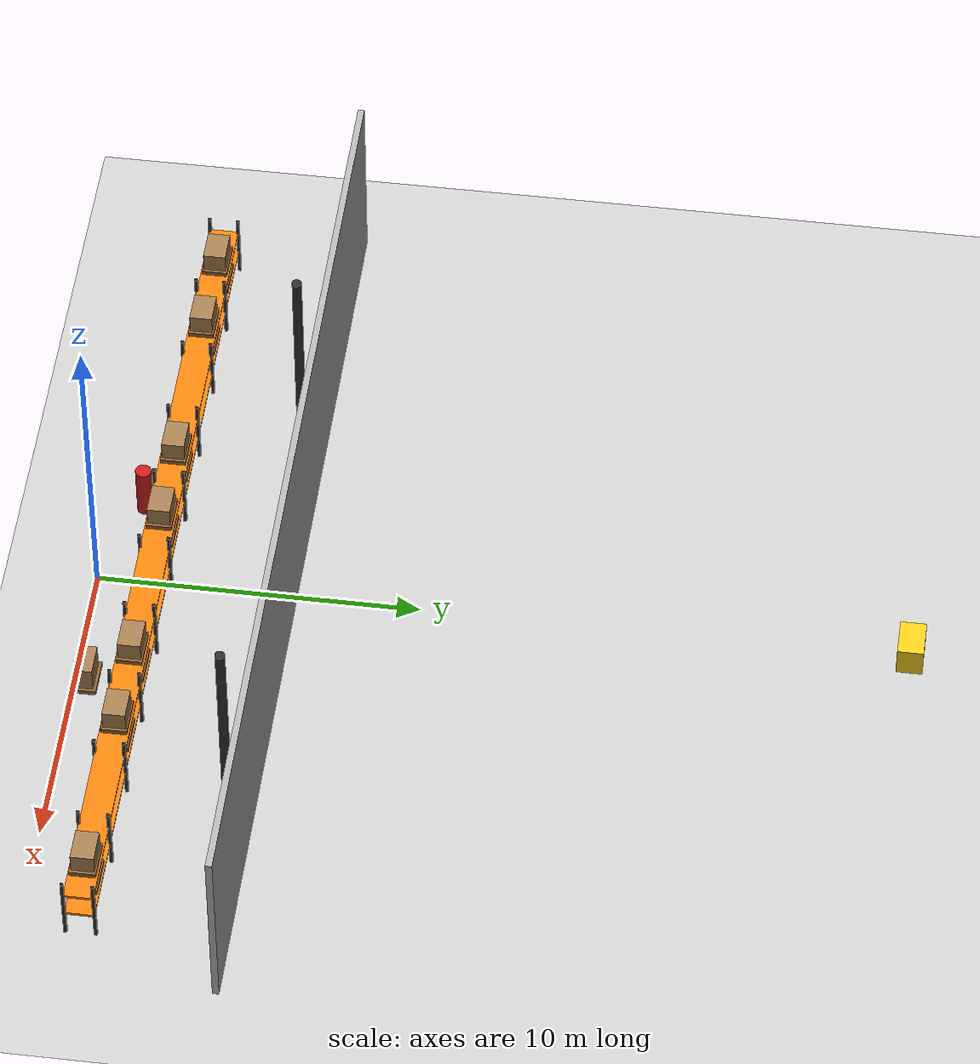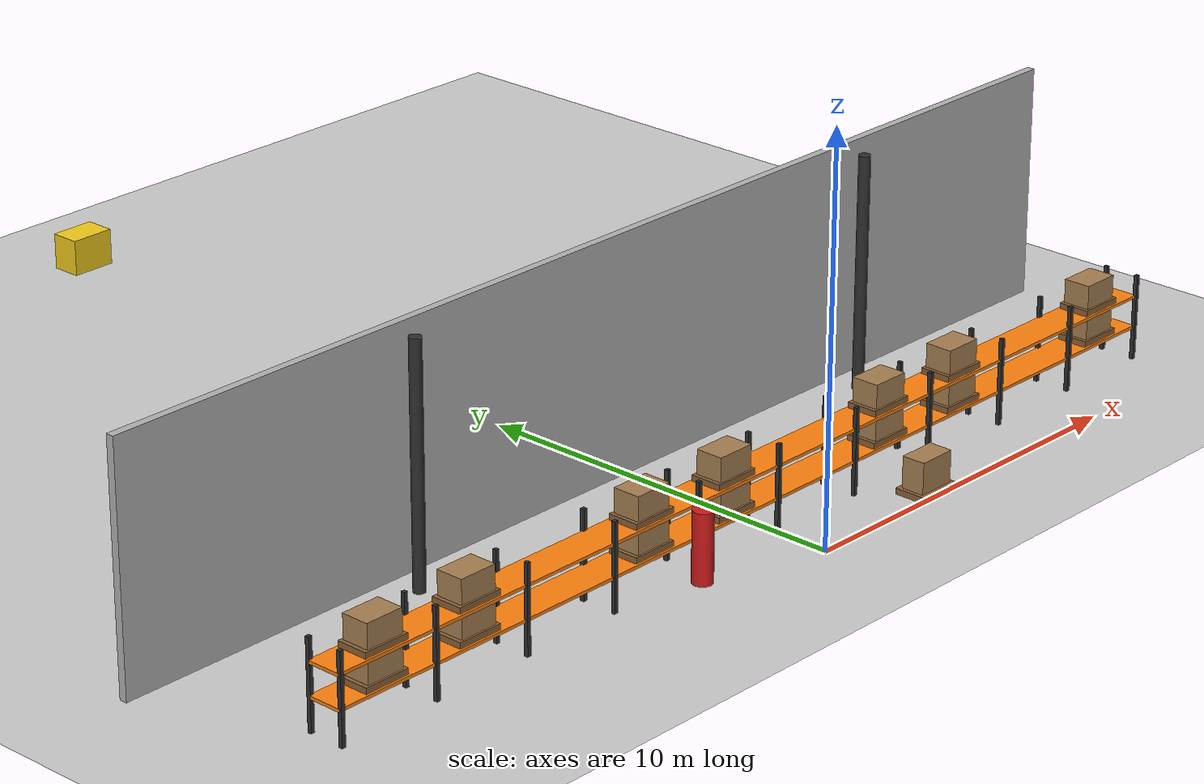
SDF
<sdf version="1.9">
 <world name="warehouse">
  <model name="ground_plane">
   <static>true</static>
   <link name="link">
    <collision name="collision">
     <geometry><plane><normal>0 0 1</normal><size>100 100</size></plane></geometry>
     <surface><friction><ode><mu>100</mu><mu2>50</mu2></ode></friction></surface>
    </collision>
    <visual name="visual">
     <geometry><plane><normal>0 0 1</normal><size>100 100</size></plane></geometry>
     <material><ambient>0.8 0.8 0.8 1</ambient><diffuse>0.8 0.8 0.8 1</diffuse></material>
    </visual>
   </link>
  </model>
  <model name="wall_north">
   <static>true</static>
   <pose>0.0000 6.1000 3.0000 0 0 0</pose>
   <link name="link">
    <collision name="collision"><geometry><box><size>30.4000 0.2000 6.0000</size></box></geometry></collision>
    <visual name="visual">
     <geometry><box><size>30.4000 0.2000 6.0000</size></box></geometry>
     <material>
      <ambient>0.70 0.70 0.70 1</ambient>
      <diffuse>0.70 0.70 0.70 1</diffuse>
      <specular>0.1 0.1 0.1 1</specular>
     </material>
    </visual>
   </link>
  </model>
  <model name="upright_n_0_0">
   <static>true</static>
   <pose>-13.5000 1.4000 1.1000 0 0 0</pose>
   <link name="link">
    <collision name="collision"><geometry><box><size>0.1000 0.1000 2.2000</size></box></geometry></collision>
    <visual name="visual">
     <geometry><box><size>0.1000 0.1000 2.2000</size></box></geometry>
     <material>
      <ambient>0.18 0.18 0.18 1</ambient>
      <diffuse>0.18 0.18 0.18 1</diffuse>
      <specular>0.1 0.1 0.1 1</specular>
     </material>
    </visual>
   </link>
  </model>
  <model name="upright_n_0_1">
   <static>true</static>
   <pose>-13.5000 2.3000 1.1000 0 0 0</pose>
   <link name="link">
    <collision name="collision"><geometry><box><size>0.1000 0.1000 2.2000</size></box></geometry></collision>
    <visual name="visual">
     <geometry><box><size>0.1000 0.1000 2.2000</size></box></geometry>
     <material>
      <ambient>0.18 0.18 0.18 1</ambient>
      <diffuse>0.18 0.18 0.18 1</diffuse>
      <specular>0.1 0.1 0.1 1</specular>
     </material>
    </visual>
   </link>
  </model>
  <model name="upright_n_1_0">
   <static>true</static>
   <pose>-10.8000 1.4000 1.1000 0 0 0</pose>
   <link name="link">
    <collision name="collision"><geometry><box><size>0.1000 0.1000 2.2000</size></box></geometry></collision>
    <visual name="visual">
     <geometry><box><size>0.1000 0.1000 2.2000</size></box></geometry>
     <material>
      <ambient>0.18 0.18 0.18 1</ambient>
      <diffuse>0.18 0.18 0.18 1</diffuse>
      <specular>0.1 0.1 0.1 1</specular>
     </material>
    </visual>
   </link>
  </model>
  <model name="upright_n_1_1">
   <static>true</static>
   <pose>-10.8000 2.3000 1.1000 0 0 0</pose>
   <link name="link">
    <collision name="collision"><geometry><box><size>0.1000 0.1000 2.2000</size></box></geometry></collision>
    <visual name="visual">
     <geometry><box><size>0.1000 0.1000 2.2000</size></box></geometry>
     <material>
      <ambient>0.18 0.18 0.18 1</ambient>
      <diffuse>0.18 0.18 0.18 1</diffuse>
      <specular>0.1 0.1 0.1 1</specular>
     </material>
    </visual>
   </link>
  </model>
  <model name="upright_n_2_0">
   <static>true</static>
   <pose>-8.1000 1.4000 1.1000 0 0 0</pose>
   <link name="link">
    <collision name="collision"><geometry><box><size>0.1000 0.1000 2.2000</size></box></geometry></collision>
    <visual name="visual">
     <geometry><box><size>0.1000 0.1000 2.2000</size></box></geometry>
     <material>
      <ambient>0.18 0.18 0.18 1</ambient>
      <diffuse>0.18 0.18 0.18 1</diffuse>
      <specular>0.1 0.1 0.1 1</specular>
     </material>
    </visual>
   </link>
  </model>
  <model name="upright_n_2_1">
   <static>true</static>
   <pose>-8.1000 2.3000 1.1000 0 0 0</pose>
   <link name="link">
    <collision name="collision"><geometry><box><size>0.1000 0.1000 2.2000</size></box></geometry></collision>
    <visual name="visual">
     <geometry><box><size>0.1000 0.1000 2.2000</size></box></geometry>
     <material>
      <ambient>0.18 0.18 0.18 1</ambient>
      <diffuse>0.18 0.18 0.18 1</diffuse>
      <specular>0.1 0.1 0.1 1</specular>
     </material>
    </visual>
   </link>
  </model>
  <model name="upright_n_3_0">
   <static>true</static>
   <pose>-5.4000 1.4000 1.1000 0 0 0</pose>
   <link name="link">
    <collision name="collision"><geometry><box><size>0.1000 0.1000 2.2000</size></box></geometry></collision>
    <visual name="visual">
     <geometry><box><size>0.1000 0.1000 2.2000</size></box></geometry>
     <material>
      <ambient>0.18 0.18 0.18 1</ambient>
      <diffuse>0.18 0.18 0.18 1</diffuse>
      <specular>0.1 0.1 0.1 1</specular>
     </material>
    </visual>
   </link>
  </model>
  <model name="upright_n_3_1">
   <static>true</static>
   <pose>-5.4000 2.3000 1.1000 0 0 0</pose>
   <link name="link">
    <collision name="collision"><geometry><box><size>0.1000 0.1000 2.2000</size></box></geometry></collision>
    <visual name="visual">
     <geometry><box><size>0.1000 0.1000 2.2000</size></box></geometry>
     <material>
      <ambient>0.18 0.18 0.18 1</ambient>
      <diffuse>0.18 0.18 0.18 1</diffuse>
      <specular>0.1 0.1 0.1 1</specular>
     </material>
    </visual>
   </link>
  </model>
  <model name="upright_n_4_0">
   <static>true</static>
   <pose>-2.7000 1.4000 1.1000 0 0 0</pose>
   <link name="link">
    <collision name="collision"><geometry><box><size>0.1000 0.1000 2.2000</size></box></geometry></collision>
    <visual name="visual">
     <geometry><box><size>0.1000 0.1000 2.2000</size></box></geometry>
     <material>
      <ambient>0.18 0.18 0.18 1</ambient>
      <diffuse>0.18 0.18 0.18 1</diffuse>
      <specular>0.1 0.1 0.1 1</specular>
     </material>
    </visual>
   </link>
  </model>
  <model name="upright_n_4_1">
   <static>true</static>
   <pose>-2.7000 2.3000 1.1000 0 0 0</pose>
   <link name="link">
    <collision name="collision"><geometry><box><size>0.1000 0.1000 2.2000</size></box></geometry></collision>
    <visual name="visual">
     <geometry><box><size>0.1000 0.1000 2.2000</size></box></geometry>
     <material>
      <ambient>0.18 0.18 0.18 1</ambient>
      <diffuse>0.18 0.18 0.18 1</diffuse>
      <specular>0.1 0.1 0.1 1</specular>
     </material>
    </visual>
   </link>
  </model>
  <model name="upright_n_5_0">
   <static>true</static>
   <pose>0.0000 1.4000 1.1000 0 0 0</pose>
   <link name="link">
    <collision name="collision"><geometry><box><size>0.1000 0.1000 2.2000</size></box></geometry></collision>
    <visual name="visual">
     <geometry><box><size>0.1000 0.1000 2.2000</size></box></geometry>
     <material>
      <ambient>0.18 0.18 0.18 1</ambient>
      <diffuse>0.18 0.18 0.18 1</diffuse>
      <specular>0.1 0.1 0.1 1</specular>
     </material>
    </visual>
   </link>
  </model>
  <model name="upright_n_5_1">
   <static>true</static>
   <pose>0.0000 2.3000 1.1000 0 0 0</pose>
   <link name="link">
    <collision name="collision"><geometry><box><size>0.1000 0.1000 2.2000</size></box></geometry></collision>
    <visual name="visual">
     <geometry><box><size>0.1000 0.1000 2.2000</size></box></geometry>
     <material>
      <ambient>0.18 0.18 0.18 1</ambient>
      <diffuse>0.18 0.18 0.18 1</diffuse>
      <specular>0.1 0.1 0.1 1</specular>
     </material>
    </visual>
   </link>
  </model>
  <model name="upright_n_6_0">
   <static>true</static>
   <pose>2.7000 1.4000 1.1000 0 0 0</pose>
   <link name="link">
    <collision name="collision"><geometry><box><size>0.1000 0.1000 2.2000</size></box></geometry></collision>
    <visual name="visual">
     <geometry><box><size>0.1000 0.1000 2.2000</size></box></geometry>
     <material>
      <ambient>0.18 0.18 0.18 1</ambient>
      <diffuse>0.18 0.18 0.18 1</diffuse>
      <specular>0.1 0.1 0.1 1</specular>
     </material>
    </visual>
   </link>
  </model>
  <model name="upright_n_6_1">
   <static>true</static>
   <pose>2.7000 2.3000 1.1000 0 0 0</pose>
   <link name="link">
    <collision name="collision"><geometry><box><size>0.1000 0.1000 2.2000</size></box></geometry></collision>
    <visual name="visual">
     <geometry><box><size>0.1000 0.1000 2.2000</size></box></geometry>
     <material>
      <ambient>0.18 0.18 0.18 1</ambient>
      <diffuse>0.18 0.18 0.18 1</diffuse>
      <specular>0.1 0.1 0.1 1</specular>
     </material>
    </visual>
   </link>
  </model>
  <model name="upright_n_7_0">
   <static>true</static>
   <pose>5.4000 1.4000 1.1000 0 0 0</pose>
   <link name="link">
    <collision name="collision"><geometry><box><size>0.1000 0.1000 2.2000</size></box></geometry></collision>
    <visual name="visual">
     <geometry><box><size>0.1000 0.1000 2.2000</size></box></geometry>
     <material>
      <ambient>0.18 0.18 0.18 1</ambient>
      <diffuse>0.18 0.18 0.18 1</diffuse>
      <specular>0.1 0.1 0.1 1</specular>
     </material>
    </visual>
   </link>
  </model>
  <model name="upright_n_7_1">
   <static>true</static>
   <pose>5.4000 2.3000 1.1000 0 0 0</pose>
   <link name="link">
    <collision name="collision"><geometry><box><size>0.1000 0.1000 2.2000</size></box></geometry></collision>
    <visual name="visual">
     <geometry><box><size>0.1000 0.1000 2.2000</size></box></geometry>
     <material>
      <ambient>0.18 0.18 0.18 1</ambient>
      <diffuse>0.18 0.18 0.18 1</diffuse>
      <specular>0.1 0.1 0.1 1</specular>
     </material>
    </visual>
   </link>
  </model>
  <model name="upright_n_8_0">
   <static>true</static>
   <pose>8.1000 1.4000 1.1000 0 0 0</pose>
   <link name="link">
    <collision name="collision"><geometry><box><size>0.1000 0.1000 2.2000</size></box></geometry></collision>
    <visual name="visual">
     <geometry><box><size>0.1000 0.1000 2.2000</size></box></geometry>
     <material>
      <ambient>0.18 0.18 0.18 1</ambient>
      <diffuse>0.18 0.18 0.18 1</diffuse>
      <specular>0.1 0.1 0.1 1</specular>
     </material>
    </visual>
   </link>
  </model>
  <model name="upright_n_8_1">
   <static>true</static>
   <pose>8.1000 2.3000 1.1000 0 0 0</pose>
   <link name="link">
    <collision name="collision"><geometry><box><size>0.1000 0.1000 2.2000</size></box></geometry></collision>
    <visual name="visual">
     <geometry><box><size>0.1000 0.1000 2.2000</size></box></geometry>
     <material>
      <ambient>0.18 0.18 0.18 1</ambient>
      <diffuse>0.18 0.18 0.18 1</diffuse>
      <specular>0.1 0.1 0.1 1</specular>
     </material>
    </visual>
   </link>
  </model>
  <model name="upright_n_9_0">
   <static>true</static>
   <pose>10.8000 1.4000 1.1000 0 0 0</pose>
   <link name="link">
    <collision name="collision"><geometry><box><size>0.1000 0.1000 2.2000</size></box></geometry></collision>
    <visual name="visual">
     <geometry><box><size>0.1000 0.1000 2.2000</size></box></geometry>
     <material>
      <ambient>0.18 0.18 0.18 1</ambient>
      <diffuse>0.18 0.18 0.18 1</diffuse>
      <specular>0.1 0.1 0.1 1</specular>
     </material>
    </visual>
   </link>
  </model>
  <model name="upright_n_9_1">
   <static>true</static>
   <pose>10.8000 2.3000 1.1000 0 0 0</pose>
   <link name="link">
    <collision name="collision"><geometry><box><size>0.1000 0.1000 2.2000</size></box></geometry></collision>
    <visual name="visual">
     <geometry><box><size>0.1000 0.1000 2.2000</size></box></geometry>
     <material>
      <ambient>0.18 0.18 0.18 1</ambient>
      <diffuse>0.18 0.18 0.18 1</diffuse>
      <specular>0.1 0.1 0.1 1</specular>
     </material>
    </visual>
   </link>
  </model>
  <model name="upright_n_10_0">
   <static>true</static>
   <pose>13.5000 1.4000 1.1000 0 0 0</pose>
   <link name="link">
    <collision name="collision"><geometry><box><size>0.1000 0.1000 2.2000</size></box></geometry></collision>
    <visual name="visual">
     <geometry><box><size>0.1000 0.1000 2.2000</size></box></geometry>
     <material>
      <ambient>0.18 0.18 0.18 1</ambient>
      <diffuse>0.18 0.18 0.18 1</diffuse>
      <specular>0.1 0.1 0.1 1</specular>
     </material>
    </visual>
   </link>
  </model>
  <model name="upright_n_10_1">
   <static>true</static>
   <pose>13.5000 2.3000 1.1000 0 0 0</pose>
   <link name="link">
    <collision name="collision"><geometry><box><size>0.1000 0.1000 2.2000</size></box></geometry></collision>
    <visual name="visual">
     <geometry><box><size>0.1000 0.1000 2.2000</size></box></geometry>
     <material>
      <ambient>0.18 0.18 0.18 1</ambient>
      <diffuse>0.18 0.18 0.18 1</diffuse>
      <specular>0.1 0.1 0.1 1</specular>
     </material>
    </visual>
   </link>
  </model>
  <model name="beam_n_0">
   <static>true</static>
   <pose>-0.0250 1.8500 0.8400 0 0 0</pose>
   <link name="link">
    <collision name="collision"><geometry><box><size>27.0500 0.9000 0.0800</size></box></geometry></collision>
    <visual name="visual">
     <geometry><box><size>27.0500 0.9000 0.0800</size></box></geometry>
     <material>
      <ambient>1.00 0.51 0.05 1</ambient>
      <diffuse>1.00 0.51 0.05 1</diffuse>
      <specular>0.1 0.1 0.1 1</specular>
     </material>
    </visual>
   </link>
  </model>
  <model name="beam_n_1">
   <static>true</static>
   <pose>-0.0250 1.8500 1.6400 0 0 0</pose>
   <link name="link">
    <collision name="collision"><geometry><box><size>27.0500 0.9000 0.0800</size></box></geometry></collision>
    <visual name="visual">
     <geometry><box><size>27.0500 0.9000 0.0800</size></box></geometry>
     <material>
      <ambient>1.00 0.51 0.05 1</ambient>
      <diffuse>1.00 0.51 0.05 1</diffuse>
      <specular>0.1 0.1 0.1 1</specular>
     </material>
    </visual>
   </link>
  </model>
  <model name="pallet_n_0_0">
   <static>true</static>
   <pose>-12.1500 1.8500 0.9550 0 0 0</pose>
   <link name="link">
    <collision name="collision"><geometry><box><size>1.2000 0.8000 0.1500</size></box></geometry></collision>
    <visual name="visual">
     <geometry><box><size>1.2000 0.8000 0.1500</size></box></geometry>
     <material>
      <ambient>0.55 0.38 0.22 1</ambient>
      <diffuse>0.55 0.38 0.22 1</diffuse>
      <specular>0.1 0.1 0.1 1</specular>
     </material>
    </visual>
   </link>
  </model>
  <model name="carton_n_0_0">
   <static>true</static>
   <pose>-12.1500 1.8500 1.3300 0 0 0</pose>
   <link name="link">
    <collision name="collision"><geometry><box><size>1.0000 0.7000 0.6000</size></box></geometry></collision>
    <visual name="visual">
     <geometry><box><size>1.0000 0.7000 0.6000</size></box></geometry>
     <material>
      <ambient>0.65 0.50 0.32 1</ambient>
      <diffuse>0.65 0.50 0.32 1</diffuse>
      <specular>0.1 0.1 0.1 1</specular>
     </material>
    </visual>
   </link>
  </model>
  <model name="pallet_n_0_1">
   <static>true</static>
   <pose>-12.1500 1.8500 1.7550 0 0 0</pose>
   <link name="link">
    <collision name="collision"><geometry><box><size>1.2000 0.8000 0.1500</size></box></geometry></collision>
    <visual name="visual">
     <geometry><box><size>1.2000 0.8000 0.1500</size></box></geometry>
     <material>
      <ambient>0.55 0.38 0.22 1</ambient>
      <diffuse>0.55 0.38 0.22 1</diffuse>
      <specular>0.1 0.1 0.1 1</specular>
     </material>
    </visual>
   </link>
  </model>
  <model name="carton_n_0_1">
   <static>true</static>
   <pose>-12.1500 1.8500 2.1300 0 0 0</pose>
   <link name="link">
    <collision name="collision"><geometry><box><size>1.0000 0.7000 0.6000</size></box></geometry></collision>
    <visual name="visual">
     <geometry><box><size>1.0000 0.7000 0.6000</size></box></geometry>
     <material>
      <ambient>0.65 0.50 0.32 1</ambient>
      <diffuse>0.65 0.50 0.32 1</diffuse>
      <specular>0.1 0.1 0.1 1</specular>
     </material>
    </visual>
   </link>
  </model>
  <model name="pallet_n_1_0">
   <static>true</static>
   <pose>-9.4500 1.8500 0.9550 0 0 0</pose>
   <link name="link">
    <collision name="collision"><geometry><box><size>1.2000 0.8000 0.1500</size></box></geometry></collision>
    <visual name="visual">
     <geometry><box><size>1.2000 0.8000 0.1500</size></box></geometry>
     <material>
      <ambient>0.55 0.38 0.22 1</ambient>
      <diffuse>0.55 0.38 0.22 1</diffuse>
      <specular>0.1 0.1 0.1 1</specular>
     </material>
    </visual>
   </link>
  </model>
  <model name="carton_n_1_0">
   <static>true</static>
   <pose>-9.4500 1.8500 1.3300 0 0 0</pose>
   <link name="link">
    <collision name="collision"><geometry><box><size>1.0000 0.7000 0.6000</size></box></geometry></collision>
    <visual name="visual">
     <geometry><box><size>1.0000 0.7000 0.6000</size></box></geometry>
     <material>
      <ambient>0.65 0.50 0.32 1</ambient>
      <diffuse>0.65 0.50 0.32 1</diffuse>
      <specular>0.1 0.1 0.1 1</specular>
     </material>
    </visual>
   </link>
  </model>
  <model name="pallet_n_1_1">
   <static>true</static>
   <pose>-9.4500 1.8500 1.7550 0 0 0</pose>
   <link name="link">
    <collision name="collision"><geometry><box><size>1.2000 0.8000 0.1500</size></box></geometry></collision>
    <visual name="visual">
     <geometry><box><size>1.2000 0.8000 0.1500</size></box></geometry>
     <material>
      <ambient>0.55 0.38 0.22 1</ambient>
      <diffuse>0.55 0.38 0.22 1</diffuse>
      <specular>0.1 0.1 0.1 1</specular>
     </material>
    </visual>
   </link>
  </model>
  <model name="carton_n_1_1">
   <static>true</static>
   <pose>-9.4500 1.8500 2.1300 0 0 0</pose>
   <link name="link">
    <collision name="collision"><geometry><box><size>1.0000 0.7000 0.6000</size></box></geometry></collision>
    <visual name="visual">
     <geometry><box><size>1.0000 0.7000 0.6000</size></box></geometry>
     <material>
      <ambient>0.65 0.50 0.32 1</ambient>
      <diffuse>0.65 0.50 0.32 1</diffuse>
      <specular>0.1 0.1 0.1 1</specular>
     </material>
    </visual>
   </link>
  </model>
  <model name="pallet_n_3_0">
   <static>true</static>
   <pose>-4.0500 1.8500 0.9550 0 0 0</pose>
   <link name="link">
    <collision name="collision"><geometry><box><size>1.2000 0.8000 0.1500</size></box></geometry></collision>
    <visual name="visual">
     <geometry><box><size>1.2000 0.8000 0.1500</size></box></geometry>
     <material>
      <ambient>0.55 0.38 0.22 1</ambient>
      <diffuse>0.55 0.38 0.22 1</diffuse>
      <specular>0.1 0.1 0.1 1</specular>
     </material>
    </visual>
   </link>
  </model>
  <model name="carton_n_3_0">
   <static>true</static>
   <pose>-4.0500 1.8500 1.3300 0 0 0</pose>
   <link name="link">
    <collision name="collision"><geometry><box><size>1.0000 0.7000 0.6000</size></box></geometry></collision>
    <visual name="visual">
     <geometry><box><size>1.0000 0.7000 0.6000</size></box></geometry>
     <material>
      <ambient>0.65 0.50 0.32 1</ambient>
      <diffuse>0.65 0.50 0.32 1</diffuse>
      <specular>0.1 0.1 0.1 1</specular>
     </material>
    </visual>
   </link>
  </model>
  <model name="pallet_n_3_1">
   <static>true</static>
   <pose>-4.0500 1.8500 1.7550 0 0 0</pose>
   <link name="link">
    <collision name="collision"><geometry><box><size>1.2000 0.8000 0.1500</size></box></geometry></collision>
    <visual name="visual">
     <geometry><box><size>1.2000 0.8000 0.1500</size></box></geometry>
     <material>
      <ambient>0.55 0.38 0.22 1</ambient>
      <diffuse>0.55 0.38 0.22 1</diffuse>
      <specular>0.1 0.1 0.1 1</specular>
     </material>
    </visual>
   </link>
  </model>
  <model name="carton_n_3_1">
   <static>true</static>
   <pose>-4.0500 1.8500 2.1300 0 0 0</pose>
   <link name="link">
    <collision name="collision"><geometry><box><size>1.0000 0.7000 0.6000</size></box></geometry></collision>
    <visual name="visual">
     <geometry><box><size>1.0000 0.7000 0.6000</size></box></geometry>
     <material>
      <ambient>0.65 0.50 0.32 1</ambient>
      <diffuse>0.65 0.50 0.32 1</diffuse>
      <specular>0.1 0.1 0.1 1</specular>
     </material>
    </visual>
   </link>
  </model>
  <model name="pallet_n_4_0">
   <static>true</static>
   <pose>-1.3500 1.8500 0.9550 0 0 0</pose>
   <link name="link">
    <collision name="collision"><geometry><box><size>1.2000 0.8000 0.1500</size></box></geometry></collision>
    <visual name="visual">
     <geometry><box><size>1.2000 0.8000 0.1500</size></box></geometry>
     <material>
      <ambient>0.55 0.38 0.22 1</ambient>
      <diffuse>0.55 0.38 0.22 1</diffuse>
      <specular>0.1 0.1 0.1 1</specular>
     </material>
    </visual>
   </link>
  </model>
  <model name="carton_n_4_0">
   <static>true</static>
   <pose>-1.3500 1.8500 1.3300 0 0 0</pose>
   <link name="link">
    <collision name="collision"><geometry><box><size>1.0000 0.7000 0.6000</size></box></geometry></collision>
    <visual name="visual">
     <geometry><box><size>1.0000 0.7000 0.6000</size></box></geometry>
     <material>
      <ambient>0.65 0.50 0.32 1</ambient>
      <diffuse>0.65 0.50 0.32 1</diffuse>
      <specular>0.1 0.1 0.1 1</specular>
     </material>
    </visual>
   </link>
  </model>
  <model name="pallet_n_4_1">
   <static>true</static>
   <pose>-1.3500 1.8500 1.7550 0 0 0</pose>
   <link name="link">
    <collision name="collision"><geometry><box><size>1.2000 0.8000 0.1500</size></box></geometry></collision>
    <visual name="visual">
     <geometry><box><size>1.2000 0.8000 0.1500</size></box></geometry>
     <material>
      <ambient>0.55 0.38 0.22 1</ambient>
      <diffuse>0.55 0.38 0.22 1</diffuse>
      <specular>0.1 0.1 0.1 1</specular>
     </material>
    </visual>
   </link>
  </model>
  <model name="carton_n_4_1">
   <static>true</static>
   <pose>-1.3500 1.8500 2.1300 0 0 0</pose>
   <link name="link">
    <collision name="collision"><geometry><box><size>1.0000 0.7000 0.6000</size></box></geometry></collision>
    <visual name="visual">
     <geometry><box><size>1.0000 0.7000 0.6000</size></box></geometry>
     <material>
      <ambient>0.65 0.50 0.32 1</ambient>
      <diffuse>0.65 0.50 0.32 1</diffuse>
      <specular>0.1 0.1 0.1 1</specular>
     </material>
    </visual>
   </link>
  </model>
  <model name="pallet_n_6_0">
   <static>true</static>
   <pose>4.0500 1.8500 0.9550 0 0 0</pose>
   <link name="link">
    <collision name="collision"><geometry><box><size>1.2000 0.8000 0.1500</size></box></geometry></collision>
    <visual name="visual">
     <geometry><box><size>1.2000 0.8000 0.1500</size></box></geometry>
     <material>
      <ambient>0.55 0.38 0.22 1</ambient>
      <diffuse>0.55 0.38 0.22 1</diffuse>
      <specular>0.1 0.1 0.1 1</specular>
     </material>
    </visual>
   </link>
  </model>
  <model name="carton_n_6_0">
   <static>true</static>
   <pose>4.0500 1.8500 1.3300 0 0 0</pose>
   <link name="link">
    <collision name="collision"><geometry><box><size>1.0000 0.7000 0.6000</size></box></geometry></collision>
    <visual name="visual">
     <geometry><box><size>1.0000 0.7000 0.6000</size></box></geometry>
     <material>
      <ambient>0.65 0.50 0.32 1</ambient>
      <diffuse>0.65 0.50 0.32 1</diffuse>
      <specular>0.1 0.1 0.1 1</specular>
     </material>
    </visual>
   </link>
  </model>
  <model name="pallet_n_6_1">
   <static>true</static>
   <pose>4.0500 1.8500 1.7550 0 0 0</pose>
   <link name="link">
    <collision name="collision"><geometry><box><size>1.2000 0.8000 0.1500</size></box></geometry></collision>
    <visual name="visual">
     <geometry><box><size>1.2000 0.8000 0.1500</size></box></geometry>
     <material>
      <ambient>0.55 0.38 0.22 1</ambient>
      <diffuse>0.55 0.38 0.22 1</diffuse>
      <specular>0.1 0.1 0.1 1</specular>
     </material>
    </visual>
   </link>
  </model>
  <model name="carton_n_6_1">
   <static>true</static>
   <pose>4.0500 1.8500 2.1300 0 0 0</pose>
   <link name="link">
    <collision name="collision"><geometry><box><size>1.0000 0.7000 0.6000</size></box></geometry></collision>
    <visual name="visual">
     <geometry><box><size>1.0000 0.7000 0.6000</size></box></geometry>
     <material>
      <ambient>0.65 0.50 0.32 1</ambient>
      <diffuse>0.65 0.50 0.32 1</diffuse>
      <specular>0.1 0.1 0.1 1</specular>
     </material>
    </visual>
   </link>
  </model>
  <model name="pallet_n_7_0">
   <static>true</static>
   <pose>6.7500 1.8500 0.9550 0 0 0</pose>
   <link name="link">
    <collision name="collision"><geometry><box><size>1.2000 0.8000 0.1500</size></box></geometry></collision>
    <visual name="visual">
     <geometry><box><size>1.2000 0.8000 0.1500</size></box></geometry>
     <material>
      <ambient>0.55 0.38 0.22 1</ambient>
      <diffuse>0.55 0.38 0.22 1</diffuse>
      <specular>0.1 0.1 0.1 1</specular>
     </material>
    </visual>
   </link>
  </model>
  <model name="carton_n_7_0">
   <static>true</static>
   <pose>6.7500 1.8500 1.3300 0 0 0</pose>
   <link name="link">
    <collision name="collision"><geometry><box><size>1.0000 0.7000 0.6000</size></box></geometry></collision>
    <visual name="visual">
     <geometry><box><size>1.0000 0.7000 0.6000</size></box></geometry>
     <material>
      <ambient>0.65 0.50 0.32 1</ambient>
      <diffuse>0.65 0.50 0.32 1</diffuse>
      <specular>0.1 0.1 0.1 1</specular>
     </material>
    </visual>
   </link>
  </model>
  <model name="pallet_n_7_1">
   <static>true</static>
   <pose>6.7500 1.8500 1.7550 0 0 0</pose>
   <link name="link">
    <collision name="collision"><geometry><box><size>1.2000 0.8000 0.1500</size></box></geometry></collision>
    <visual name="visual">
     <geometry><box><size>1.2000 0.8000 0.1500</size></box></geometry>
     <material>
      <ambient>0.55 0.38 0.22 1</ambient>
      <diffuse>0.55 0.38 0.22 1</diffuse>
      <specular>0.1 0.1 0.1 1</specular>
     </material>
    </visual>
   </link>
  </model>
  <model name="carton_n_7_1">
   <static>true</static>
   <pose>6.7500 1.8500 2.1300 0 0 0</pose>
   <link name="link">
    <collision name="collision"><geometry><box><size>1.0000 0.7000 0.6000</size></box></geometry></collision>
    <visual name="visual">
     <geometry><box><size>1.0000 0.7000 0.6000</size></box></geometry>
     <material>
      <ambient>0.65 0.50 0.32 1</ambient>
      <diffuse>0.65 0.50 0.32 1</diffuse>
      <specular>0.1 0.1 0.1 1</specular>
     </material>
    </visual>
   </link>
  </model>
  <model name="pallet_n_9_0">
   <static>true</static>
   <pose>12.1500 1.8500 0.9550 0 0 0</pose>
   <link name="link">
    <collision name="collision"><geometry><box><size>1.2000 0.8000 0.1500</size></box></geometry></collision>
    <visual name="visual">
     <geometry><box><size>1.2000 0.8000 0.1500</size></box></geometry>
     <material>
      <ambient>0.55 0.38 0.22 1</ambient>
      <diffuse>0.55 0.38 0.22 1</diffuse>
      <specular>0.1 0.1 0.1 1</specular>
     </material>
    </visual>
   </link>
  </model>
  <model name="carton_n_9_0">
   <static>true</static>
   <pose>12.1500 1.8500 1.3300 0 0 0</pose>
   <link name="link">
    <collision name="collision"><geometry><box><size>1.0000 0.7000 0.6000</size></box></geometry></collision>
    <visual name="visual">
     <geometry><box><size>1.0000 0.7000 0.6000</size></box></geometry>
     <material>
      <ambient>0.65 0.50 0.32 1</ambient>
      <diffuse>0.65 0.50 0.32 1</diffuse>
      <specular>0.1 0.1 0.1 1</specular>
     </material>
    </visual>
   </link>
  </model>
  <model name="pallet_n_9_1">
   <static>true</static>
   <pose>12.1500 1.8500 1.7550 0 0 0</pose>
   <link name="link">
    <collision name="collision"><geometry><box><size>1.2000 0.8000 0.1500</size></box></geometry></collision>
    <visual name="visual">
     <geometry><box><size>1.2000 0.8000 0.1500</size></box></geometry>
     <material>
      <ambient>0.55 0.38 0.22 1</ambient>
      <diffuse>0.55 0.38 0.22 1</diffuse>
      <specular>0.1 0.1 0.1 1</specular>
     </material>
    </visual>
   </link>
  </model>
  <model name="carton_n_9_1">
   <static>true</static>
   <pose>12.1500 1.8500 2.1300 0 0 0</pose>
   <link name="link">
    <collision name="collision"><geometry><box><size>1.0000 0.7000 0.6000</size></box></geometry></collision>
    <visual name="visual">
     <geometry><box><size>1.0000 0.7000 0.6000</size></box></geometry>
     <material>
      <ambient>0.65 0.50 0.32 1</ambient>
      <diffuse>0.65 0.50 0.32 1</diffuse>
      <specular>0.1 0.1 0.1 1</specular>
     </material>
    </visual>
   </link>
  </model>
  <model name="column_0">
   <static>true</static>
   <pose>-7.5000 5.2000 3.0000 0 0 0</pose>
   <link name="link">
    <collision name="collision">
     <geometry><cylinder><radius>0.1500</radius><length>6.0000</length></cylinder></geometry>
    </collision>
    <visual name="visual">
     <geometry><cylinder><radius>0.1500</radius><length>6.0000</length></cylinder></geometry>
     <material>
      <ambient>0.18 0.18 0.18 1</ambient>
      <diffuse>0.18 0.18 0.18 1</diffuse>
      <specular>0.1 0.1 0.1 1</specular>
     </material>
    </visual>
   </link>
  </model>
  <model name="column_1">
   <static>true</static>
   <pose>7.5000 5.2000 3.0000 0 0 0</pose>
   <link name="link">
    <collision name="collision">
     <geometry><cylinder><radius>0.1500</radius><length>6.0000</length></cylinder></geometry>
    </collision>
    <visual name="visual">
     <geometry><cylinder><radius>0.1500</radius><length>6.0000</length></cylinder></geometry>
     <material>
      <ambient>0.18 0.18 0.18 1</ambient>
      <diffuse>0.18 0.18 0.18 1</diffuse>
      <specular>0.1 0.1 0.1 1</specular>
     </material>
    </visual>
   </link>
  </model>
  <model name="aisle_pallet_0">
   <static>true</static>
   <pose>4.0000 0.3500 0.0750 0 0 0</pose>
   <link name="link">
    <collision name="collision"><geometry><box><size>1.2000 0.8000 0.1500</size></box></geometry></collision>
    <visual name="visual">
     <geometry><box><size>1.2000 0.8000 0.1500</size></box></geometry>
     <material>
      <ambient>0.55 0.38 0.22 1</ambient>
      <diffuse>0.55 0.38 0.22 1</diffuse>
      <specular>0.1 0.1 0.1 1</specular>
     </material>
    </visual>
   </link>
  </model>
  <model name="aisle_stack_0">
   <static>true</static>
   <pose>4.0000 0.3500 0.5500 0 0 0</pose>
   <link name="link">
    <collision name="collision"><geometry><box><size>1.0000 0.6000 0.8000</size></box></geometry></collision>
    <visual name="visual">
     <geometry><box><size>1.0000 0.6000 0.8000</size></box></geometry>
     <material>
      <ambient>0.65 0.50 0.32 1</ambient>
      <diffuse>0.65 0.50 0.32 1</diffuse>
      <specular>0.1 0.1 0.1 1</specular>
     </material>
    </visual>
   </link>
  </model>
  <model name="person_1">
   <static>true</static>
   <pose>-3.0000 1.0000 0.8750 0 0 0</pose>
   <link name="link">
    <collision name="collision">
     <geometry><cylinder><radius>0.2500</radius><length>1.7500</length></cylinder></geometry>
    </collision>
    <visual name="visual">
     <geometry><cylinder><radius>0.2500</radius><length>1.7500</length></cylinder></geometry>
     <material>
      <ambient>0.80 0.10 0.10 1</ambient>
      <diffuse>0.80 0.10 0.10 1</diffuse>
      <specular>0.1 0.1 0.1 1</specular>
     </material>
    </visual>
   </link>
  </model>
  <model name="fault_pallet">
   <static>false</static>
   <pose>0.0000 25.0000 0.4750 0 0 0</pose>
   <link name="link">
    <inertial>
     <mass>250.0</mass>
     <inertia><ixx>32.1354</ixx><iyy>48.8021</iyy><izz>43.3333</izz><ixy>0</ixy><ixz>0</ixz><iyz>0</iyz></inertia>
    </inertial>
    <collision name="collision"><geometry><box><size>1.2000 0.8000 0.9500</size></box></geometry></collision>
    <visual name="visual">
     <geometry><box><size>1.2000 0.8000 0.9500</size></box></geometry>
     <material>
      <ambient>0.95 0.80 0.10 1</ambient>
      <diffuse>0.95 0.80 0.10 1</diffuse>
      <specular>0.1 0.1 0.1 1</specular>
     </material>
    </visual>
   </link>
  </model>
 </world>
</sdf>
